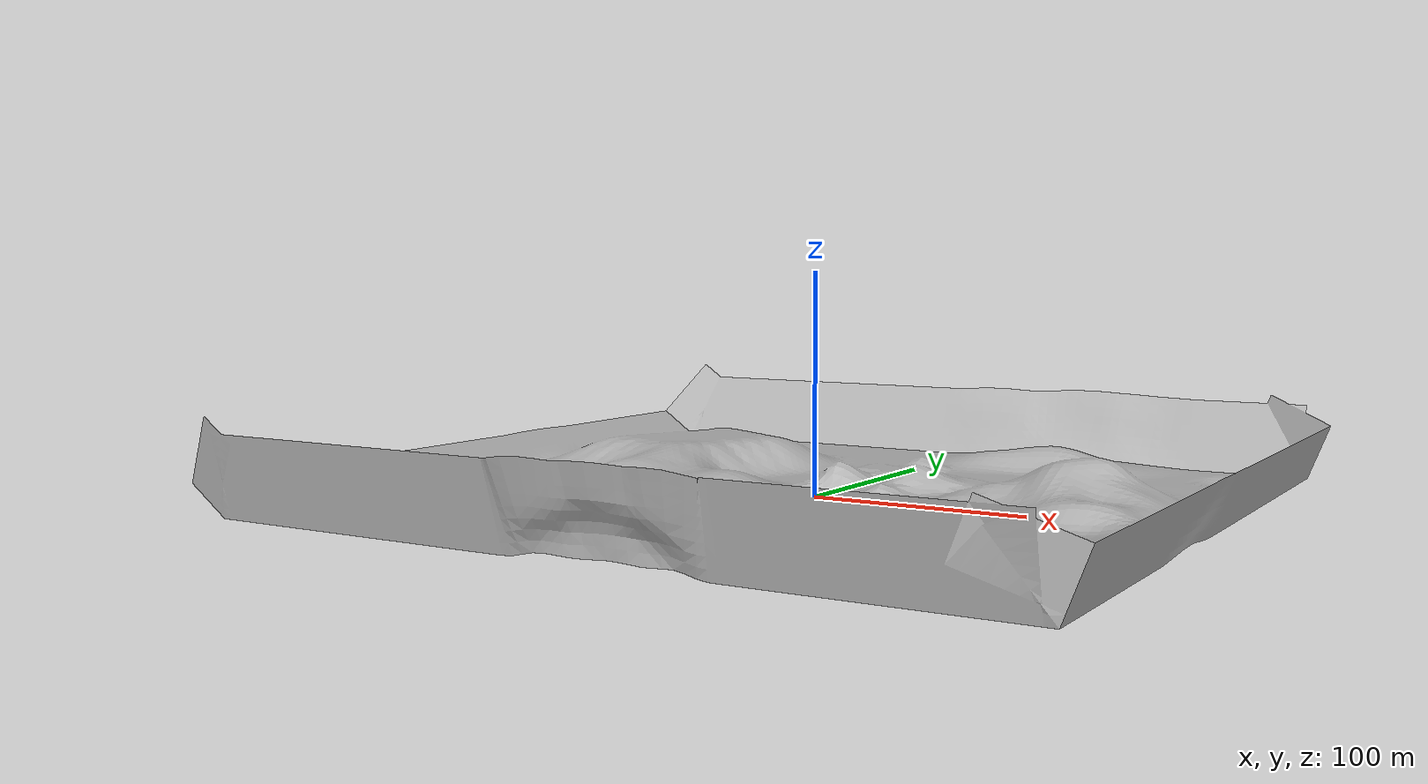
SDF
<?xml version="1.0" ?>
<sdf version="1.5">
  <model name="terrain_grass">
    <pose>0 0 0 0 0 0</pose>
    <static>true</static>
    <link name="body">
      <visual name="visual">
        <geometry>
          <mesh><uri>model://terrain_grass/media/terrain.dae</uri></mesh>
        </geometry>
	<material>
          <script>
            <uri>model://terrain_grass/media/scripts</uri>
            <uri>model://terrain_grass/media/textures</uri>
            <name>RepeatedGrass/Diffuse</name>
          </script>
        </material>
      </visual>
      <collision name="collision">
        <geometry>
          <mesh><uri>model://terrain_grass/media/terrain.dae</uri></mesh>
        </geometry>
      </collision>
    </link>
  </model>
</sdf>
